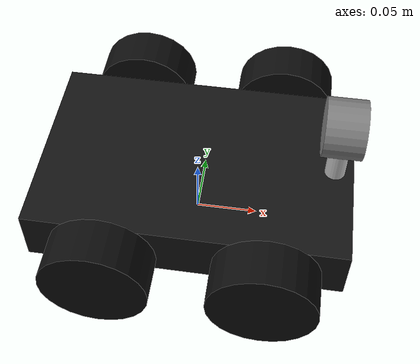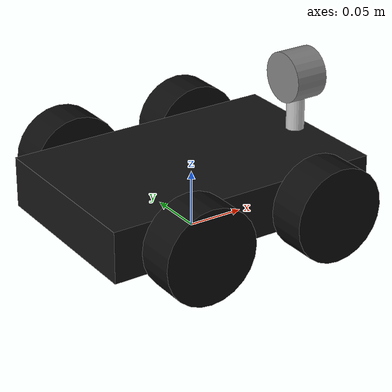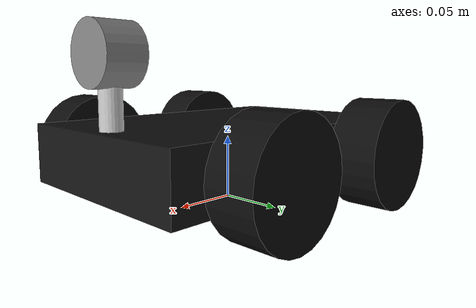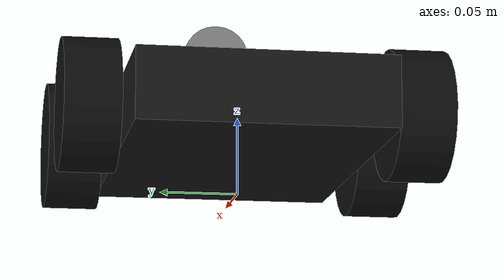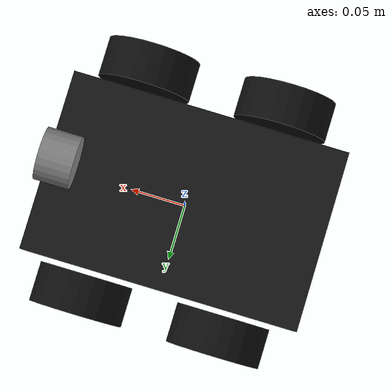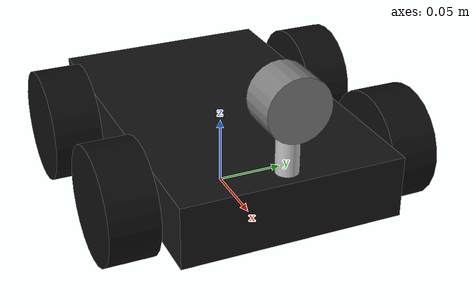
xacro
<?xml version="1.0"?>
<robot name="rover4wd" xmlns:xacro="http://www.ros.org/wiki/xacro">

  <!-- Chassis (flat board) -->
  <xacro:property name="chassis_length" value="0.247"/>   <!-- 24.7 cm -->
  <xacro:property name="chassis_width"  value="0.16"/>    <!-- 16 cm -->
  <xacro:property name="chassis_height" value="0.045"/>   <!-- 4.5 cm -->
  <xacro:property name="chassis_mass"   value="1.2"/>     <!-- placeholder, update once weighed -->

  <!-- Wheels -->
  <xacro:property name="wheel_radius" value="0.0415"/>    <!-- 8.3 cm diameter / 2 -->
  <xacro:property name="wheel_width"  value="0.035"/>     <!-- 3.5 cm -->
  <xacro:property name="wheel_mass"   value="0.15"/>      <!-- placeholder, update once weighed -->

  <!-- Wheel-center offsets (measured from chassis edges) -->
  <xacro:property name="wheel_from_front" value="0.06"/>   <!-- 6 cm from front edge -->
  <xacro:property name="wheel_from_back"  value="0.063"/>  <!-- 6.3 cm from back edge -->
  <xacro:property name="wheel_from_bottom" value="0.022"/> <!-- 2.2 cm from bottom of chassis -->
  <xacro:property name="wheel_side_gap"   value="0.005"/>  <!-- 0.5 cm gap to chassis side (hex coupling) -->

  <!-- Camera -->
  <xacro:property name="camera_from_front" value="0.015"/> <!-- 1.5 cm from front edge -->
  <xacro:property name="camera_mount_height" value="0.05"/> <!-- PLACEHOLDER: 5 cm guess -->
  <xacro:property name="camera_mount_radius" value="0.008"/>
  <xacro:property name="camera_body_diameter" value="0.045"/> <!-- approx, from camera photo -->
  <xacro:property name="camera_body_depth"    value="0.03"/>

  <!-- ============================================================
       DERIVED VALUES
       ============================================================ -->
  <xacro:property name="half_length" value="${chassis_length/2}"/>
  <xacro:property name="half_width"  value="${chassis_width/2}"/>

  <!-- Ground clearance under the chassis, derived from wheel radius
       and how high the wheel centers sit above the chassis bottom -->
  <xacro:property name="ground_clearance" value="${wheel_radius - wheel_from_bottom}"/>
  <xacro:property name="chassis_center_z" value="${ground_clearance + chassis_height/2}"/>

  <!-- Wheel center x positions (relative to chassis geometric center) -->
  <xacro:property name="wheel_x_front" value="${half_length - wheel_from_front}"/>
  <xacro:property name="wheel_x_rear"  value="${-(half_length - wheel_from_back)}"/>

  <!-- Wheel center y position (relative to chassis centerline) -->
  <xacro:property name="wheel_y" value="${half_width + wheel_side_gap + wheel_width/2}"/>

  <!-- Wheel center z, relative to base_link (chassis center frame) -->
  <xacro:property name="wheel_z" value="${wheel_radius - chassis_center_z}"/>

  <!-- Camera x position (relative to chassis center) -->
  <xacro:property name="camera_x" value="${half_length - camera_from_front}"/>

  <!-- ============================================================
       MATERIALS
       ============================================================ -->
  <material name="carbon_black">
    <color rgba="0.08 0.08 0.08 1.0"/>
  </material>
  <material name="wheel_black">
    <color rgba="0.05 0.05 0.05 1.0"/>
  </material>
  <material name="rim_red">
    <color rgba="0.6 0.0 0.0 1.0"/>
  </material>
  <material name="camera_grey">
    <color rgba="0.5 0.5 0.5 1.0"/>
  </material>
  <material name="mount_silver">
    <color rgba="0.75 0.75 0.75 1.0"/>
  </material>

  <link name="base_footprint"/>

  <joint name="base_footprint_to_base_link" type="fixed">
    <parent link="base_footprint"/>
    <child link="base_link"/>
    <origin xyz="0 0 ${chassis_center_z}" rpy="0 0 0"/>
  </joint>

  <!-- ============================================================
       base_link: the flat chassis board
       ============================================================ -->
  <link name="base_link">
    <visual>
      <origin xyz="0 0 0" rpy="0 0 0"/>
      <geometry>
        <box size="${chassis_length} ${chassis_width} ${chassis_height}"/>
      </geometry>
      <material name="carbon_black"/>
    </visual>
    <collision>
      <origin xyz="0 0 0" rpy="0 0 0"/>
      <geometry>
        <box size="${chassis_length} ${chassis_width} ${chassis_height}"/>
      </geometry>
    </collision>
    <inertial>
      <mass value="${chassis_mass}"/>
      <origin xyz="0 0 0" rpy="0 0 0"/>
      <inertia
        ixx="${chassis_mass/12*(chassis_width*chassis_width + chassis_height*chassis_height)}"
        iyy="${chassis_mass/12*(chassis_length*chassis_length + chassis_height*chassis_height)}"
        izz="${chassis_mass/12*(chassis_length*chassis_length + chassis_width*chassis_width)}"
        ixy="0" ixz="0" iyz="0"/>
    </inertial>
  </link>

  <!-- ============================================================
       WHEEL MACRO
       ============================================================ -->
  <xacro:macro name="wheel" params="name x y">
    <link name="${name}_wheel">
      <visual>
        <origin xyz="0 0 0" rpy="1.5708 0 0"/>
        <geometry>
          <cylinder radius="${wheel_radius}" length="${wheel_width}"/>
        </geometry>
        <material name="wheel_black"/>
      </visual>
      <collision>
        <origin xyz="0 0 0" rpy="1.5708 0 0"/>
        <geometry>
          <cylinder radius="${wheel_radius}" length="${wheel_width}"/>
        </geometry>
      </collision>
      <inertial>
        <mass value="${wheel_mass}"/>
        <origin xyz="0 0 0" rpy="0 0 0"/>
        <inertia
          ixx="${wheel_mass/12*(3*wheel_radius*wheel_radius + wheel_width*wheel_width)}"
          iyy="${wheel_mass/12*(3*wheel_radius*wheel_radius + wheel_width*wheel_width)}"
          izz="${wheel_mass/2*wheel_radius*wheel_radius}"
          ixy="0" ixz="0" iyz="0"/>
      </inertial>
    </link>

    <joint name="${name}_wheel_joint" type="continuous">
      <parent link="base_link"/>
      <child link="${name}_wheel"/>
      <origin xyz="${x} ${y} ${wheel_z}" rpy="0 0 0"/>
      <axis xyz="0 1 0"/>
      <dynamics damping="0.1" friction="0.1"/>
    </joint>
  </xacro:macro>

  <xacro:wheel name="front_left"  x="${wheel_x_front}" y="${wheel_y}"/>
  <xacro:wheel name="front_right" x="${wheel_x_front}" y="${-wheel_y}"/>
  <xacro:wheel name="rear_left"   x="${wheel_x_rear}"  y="${wheel_y}"/>
  <xacro:wheel name="rear_right"  x="${wheel_x_rear}"  y="${-wheel_y}"/>

  <link name="camera_mount_link">
    <visual>
      <origin xyz="0 0 ${camera_mount_height/2}" rpy="0 0 0"/>
      <geometry>
        <cylinder radius="${camera_mount_radius}" length="${camera_mount_height}"/>
      </geometry>
      <material name="mount_silver"/>
    </visual>
    <collision>
      <origin xyz="0 0 ${camera_mount_height/2}" rpy="0 0 0"/>
      <geometry>
        <cylinder radius="${camera_mount_radius}" length="${camera_mount_height}"/>
      </geometry>
    </collision>
    <inertial>
      <mass value="0.02"/>
      <origin xyz="0 0 ${camera_mount_height/2}" rpy="0 0 0"/>
      <inertia ixx="0.00001" iyy="0.00001" izz="0.00001" ixy="0" ixz="0" iyz="0"/>
    </inertial>
  </link>

  <joint name="camera_mount_joint" type="fixed">
    <parent link="base_link"/>
    <child link="camera_mount_link"/>
    <origin xyz="${camera_x} 0 ${chassis_height/2}" rpy="0 0 0"/>
  </joint>

  <!-- camera_link: the RGB-D camera body, sitting on top of the mount. -->
  <link name="camera_link">
    <visual>
      <origin xyz="0 0 0" rpy="0 1.5708 0"/>
      <geometry>
        <cylinder radius="${camera_body_diameter/2}" length="${camera_body_depth}"/>
      </geometry>
      <material name="camera_grey"/>
    </visual>
    <collision>
      <origin xyz="0 0 0" rpy="0 1.5708 0"/>
      <geometry>
        <cylinder radius="${camera_body_diameter/2}" length="${camera_body_depth}"/>
      </geometry>
    </collision>
    <inertial>
      <mass value="0.05"/>
      <origin xyz="0 0 0" rpy="0 0 0"/>
      <inertia ixx="0.00002" iyy="0.00002" izz="0.00002" ixy="0" ixz="0" iyz="0"/>
    </inertial>
  </link>

  <joint name="camera_joint" type="fixed">
    <parent link="camera_mount_link"/>
    <child link="camera_link"/>
    <origin xyz="0 0 ${camera_mount_height}" rpy="0 0 0"/>
  </joint>

  <!-- Optical frame: required by most ROS2 camera drivers / RTAB-Map
       (REP-103: x-right, y-down, z-forward) -->
  <link name="camera_optical_frame"/>
  <joint name="camera_optical_joint" type="fixed">
    <parent link="camera_link"/>
    <child link="camera_optical_frame"/>
    <origin xyz="0 0 0" rpy="-1.5708 0 -1.5708"/>
  </joint>

</robot>
